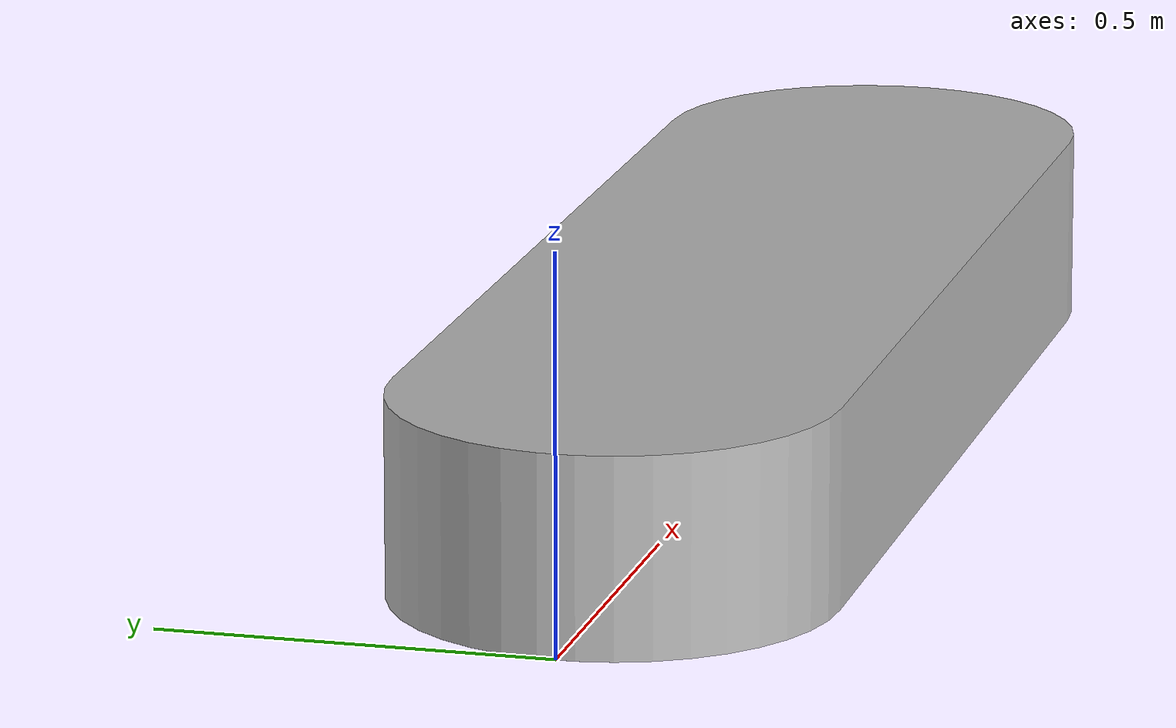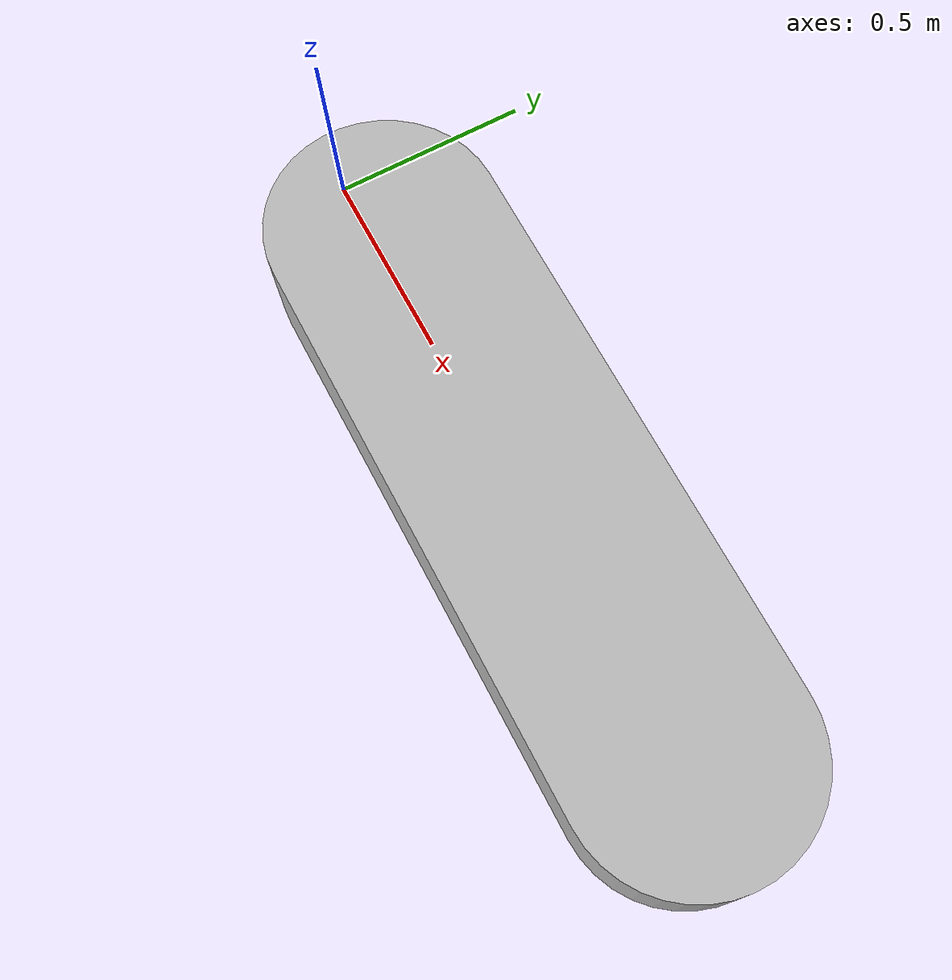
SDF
<?xml version="1.0" ?>
<sdf version="1.4">
  <model name="test_bar">
    <pose>0 0 0 0 0 0</pose>
    <static>true</static>
    <link name="link">
      <visual name="visual">
        <geometry>
          <mesh>
            <uri>file:///home/tbm/temp/test_models/models/test_model_3/meshes/Part1.stl</uri>
          </mesh>
				</geometry>
      </visual>
    </link>
  </model>
</sdf>
